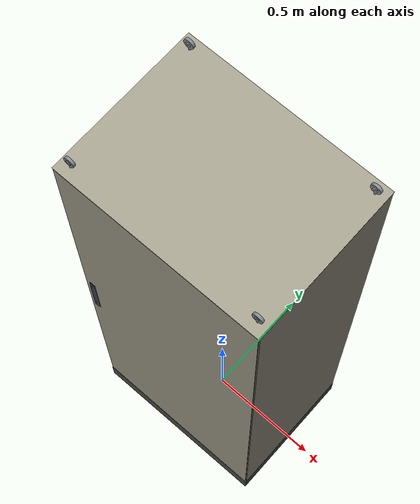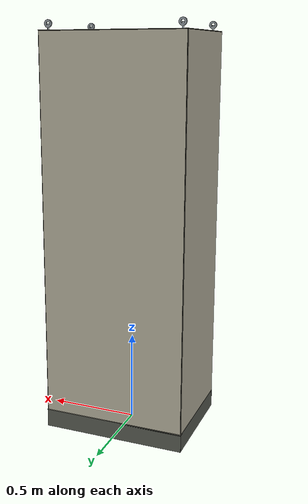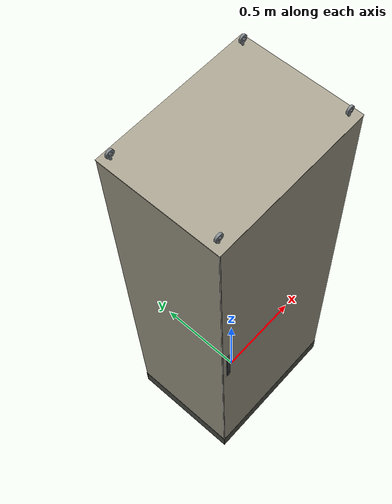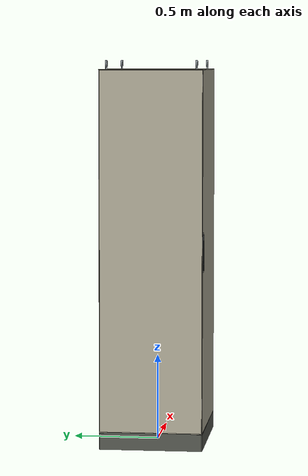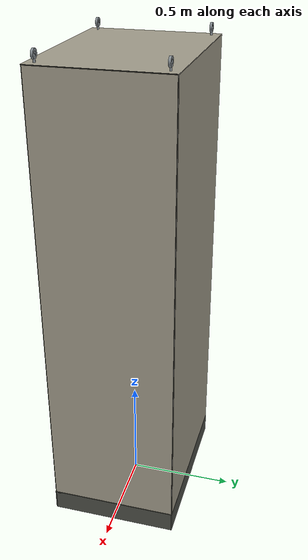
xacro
<?xml version="1.0"?>
<!-- CC0. Floor center, front -Y. Body W/D/H exclude optional base and lifting eyes.
     Closed-door presentation only; no PLC, hinges, sealing or IP behavior implied. -->
<robot xmlns:xacro="http://www.ros.org/wiki/xacro" name="nito-fz-standard">
  <xacro:include filename="../../equipment-common/visual/primitives.xacro"/>
  <xacro:arg name="width" default="0.8"/><xacro:arg name="depth" default="0.6"/>
  <xacro:arg name="height" default="2.1"/><xacro:arg name="base" default="0.1"/>
  <xacro:property name="w" value="$(arg width)"/><xacro:property name="d" value="$(arg depth)"/>
  <xacro:property name="h" value="$(arg height)"/><xacro:property name="b" value="$(arg base)"/>
  <material name="paint"><color rgba="0.64 0.62 0.55 1"/></material>
  <material name="seam"><color rgba="0.17 0.17 0.15 1"/></material>
  <material name="zinc"><color rgba="0.52 0.55 0.57 1"/></material>
  <material name="base"><color rgba="0.30 0.31 0.28 1"/></material>
  <material name="handle"><color rgba="0.23 0.25 0.26 1"/></material>
  <link name="root"/>
  <!-- Inset core supplies the dark, narrow panel joints; skins are 1.6 mm. -->
  <xacro:box name="core" size="${w-0.0032} ${d-0.0032} ${h-0.0032}" xyz="0 0 ${b+h/2}" mat="seam"/>
  <xacro:box name="left_skin" size="0.0016 ${d-0.008} ${h-0.008}" xyz="${-w/2+0.0008} 0 ${b+h/2}" mat="paint"/>
  <xacro:box name="right_skin" size="0.0016 ${d-0.008} ${h-0.008}" xyz="${w/2-0.0008} 0 ${b+h/2}" mat="paint"/>
  <xacro:box name="back_skin" size="${w-0.008} 0.0016 ${h-0.008}" xyz="0 ${d/2-0.0008} ${b+h/2}" mat="paint"/>
  <xacro:box name="roof" size="${w} ${d} 0.0016" xyz="0 0 ${b+h-0.0008}" mat="paint"/>
  <xacro:box name="sill" size="${w} ${d} 0.004" xyz="0 0 ${b+0.002}" mat="paint"/>
  <xacro:property name="n" value="${2 if w &gt;= 1.0 else 1}"/>
  <xacro:property name="leaf" value="${(w-0.004*(n+1))/n}"/>
  <xacro:macro name="door" params="i">
    <xacro:box name="door_${i}" size="${leaf} 0.0023 ${h-0.008}"
               xyz="${-w/2+0.004+leaf/2+i*(leaf+0.004)} ${-d/2+0.00115} ${b+h/2}" mat="paint"/>
  </xacro:macro>
  <xacro:door i="0"/><xacro:if value="${n == 2}"><xacro:door i="1"/></xacro:if>
  <!-- N200 recessed flat handle: one operating handle even on double doors. -->
  <xacro:property name="hx" value="${-w/2+0.035 if n == 1 else 0.035}"/>
  <xacro:box name="handle_recess" size="0.027 0.001 0.23" xyz="${hx} ${-d/2-0.0005} ${b+h/2}" mat="seam"/>
  <xacro:box name="flat_handle" size="0.018 0.004 0.21" xyz="${hx} ${-d/2-0.003} ${b+h/2}" mat="handle"/>
  <xacro:cylinder name="lock" radius="0.004" length="0.002" xyz="${hx} ${-d/2-0.006} ${b+h/2-0.065}" rpy="${pi/2} 0 0" mat="zinc"/>
  <xacro:macro name="eye" params="sx sy suffix">
    <xacro:mesh name="lifting_eye_${suffix}" file="../meshes/lifting-eye.stl"
                xyz="${sx*(w/2-0.04)} ${sy*(d/2-0.04)} ${b+h}" mat="zinc"/>
  </xacro:macro>
  <xacro:eye sx="-1" sy="-1" suffix="lf"/><xacro:eye sx="1" sy="-1" suffix="rf"/>
  <xacro:eye sx="-1" sy="1" suffix="lb"/><xacro:eye sx="1" sy="1" suffix="rb"/>
  <!-- FCX-Z assembly base: steel channel, genuinely open center, not a solid block. -->
  <xacro:if value="${b &gt; 0}">
    <xacro:box name="base_front" size="${w} 0.0045 ${b}" xyz="0 ${-d/2+0.00225} ${b/2}" mat="base"/>
    <xacro:box name="base_back" size="${w} 0.0045 ${b}" xyz="0 ${d/2-0.00225} ${b/2}" mat="base"/>
    <xacro:box name="base_left" size="0.0032 ${d-0.009} ${b}" xyz="${-w/2+0.0016} 0 ${b/2}" mat="base"/>
    <xacro:box name="base_right" size="0.0032 ${d-0.009} ${b}" xyz="${w/2-0.0016} 0 ${b/2}" mat="base"/>
    <xacro:box name="base_top_front" size="${w} 0.03 0.0045" xyz="0 ${-d/2+0.015} ${b-0.00225}" mat="base"/>
    <xacro:box name="base_top_back" size="${w} 0.03 0.0045" xyz="0 ${d/2-0.015} ${b-0.00225}" mat="base"/>
  </xacro:if>
</robot>

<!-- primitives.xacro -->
<!-- CC0. Visual-only primitives, each with a stable removable resident name. -->
<robot xmlns:xacro="http://www.ros.org/wiki/xacro">
  <xacro:macro name="box" params="name size xyz mat">
    <link name="${name}"><visual><origin xyz="${xyz}"/>
      <geometry><box size="${size}"/></geometry><material name="${mat}"/>
    </visual></link>
    <joint name="j_${name}" type="fixed"><parent link="root"/><child link="${name}"/></joint>
  </xacro:macro>
  <xacro:macro name="cylinder" params="name radius length xyz rpy mat">
    <link name="${name}"><visual><origin xyz="${xyz}" rpy="${rpy}"/>
      <geometry><cylinder radius="${radius}" length="${length}"/></geometry><material name="${mat}"/>
    </visual></link>
    <joint name="j_${name}" type="fixed"><parent link="root"/><child link="${name}"/></joint>
  </xacro:macro>
  <xacro:macro name="mesh" params="name file xyz mat">
    <link name="${name}"><visual><origin xyz="${xyz}"/>
      <geometry><mesh filename="${file}"/></geometry><material name="${mat}"/>
    </visual></link>
    <joint name="j_${name}" type="fixed"><parent link="root"/><child link="${name}"/></joint>
  </xacro:macro>
</robot>
